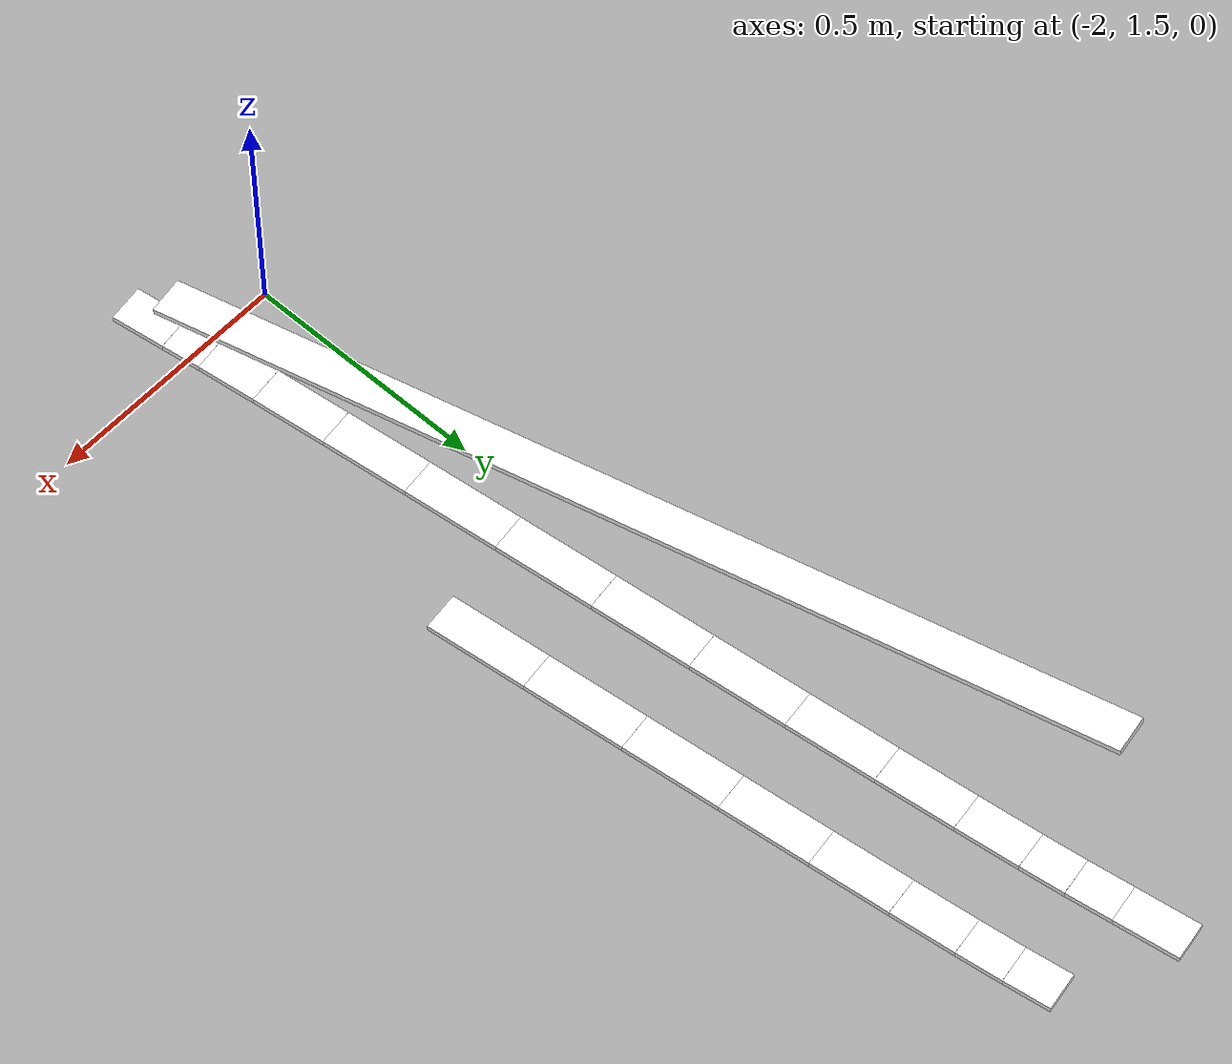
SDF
<sdf version="1.9">
 <world name="igvc_competition">
  <model name="Line_001_0215">
   <static>1</static>
   <pose>-2.0933 3.5122 0.011 0 0 -1.410399</pose>
   <link name="link">
    <visual name="visual">
     <geometry><box><size>0.1315 0.0762 0.012</size></box></geometry>
     <material>
      <ambient>0.98 0.98 0.98 1</ambient>
      <diffuse>0.98 0.98 0.98 1</diffuse>
      <specular>0.05 0.05 0.05 1</specular>
      <emissive>0.9 0.9 0.9 1</emissive>
     </material>
    </visual>
   </link>
  </model>
  <model name="Line_001_0216">
   <static>1</static>
   <pose>-1.8779 3.4328 0.011 0 0 -1.411595</pose>
   <link name="link">
    <visual name="visual">
     <geometry><box><size>0.0940 0.0762 0.012</size></box></geometry>
     <material>
      <ambient>0.98 0.98 0.98 1</ambient>
      <diffuse>0.98 0.98 0.98 1</diffuse>
      <specular>0.05 0.05 0.05 1</specular>
      <emissive>0.9 0.9 0.9 1</emissive>
     </material>
    </visual>
   </link>
  </model>
  <model name="Line_001_0217">
   <static>1</static>
   <pose>-2.0755 3.4017 0.011 0 0 -1.410987</pose>
   <link name="link">
    <visual name="visual">
     <geometry><box><size>0.0924 0.0762 0.012</size></box></geometry>
     <material>
      <ambient>0.98 0.98 0.98 1</ambient>
      <diffuse>0.98 0.98 0.98 1</diffuse>
      <specular>0.05 0.05 0.05 1</specular>
      <emissive>0.9 0.9 0.9 1</emissive>
     </material>
    </visual>
   </link>
  </model>
  <model name="Line_001_0218">
   <static>1</static>
   <pose>-1.8637 3.3405 0.011 0 0 -1.426006</pose>
   <link name="link">
    <visual name="visual">
     <geometry><box><size>0.0929 0.0762 0.012</size></box></geometry>
     <material>
      <ambient>0.98 0.98 0.98 1</ambient>
      <diffuse>0.98 0.98 0.98 1</diffuse>
      <specular>0.05 0.05 0.05 1</specular>
      <emissive>0.9 0.9 0.9 1</emissive>
     </material>
    </visual>
   </link>
  </model>
  <model name="Line_001_0219">
   <static>1</static>
   <pose>-2.0616 3.3114 0.011 0 0 -1.426235</pose>
   <link name="link">
    <visual name="visual">
     <geometry><box><size>0.0902 0.0762 0.012</size></box></geometry>
     <material>
      <ambient>0.98 0.98 0.98 1</ambient>
      <diffuse>0.98 0.98 0.98 1</diffuse>
      <specular>0.05 0.05 0.05 1</specular>
      <emissive>0.9 0.9 0.9 1</emissive>
     </material>
    </visual>
   </link>
  </model>
  <model name="Line_001_0220">
   <static>1</static>
   <pose>-1.8483 3.2290 0.011 0 0 -1.438745</pose>
   <link name="link">
    <visual name="visual">
     <geometry><box><size>0.1322 0.0762 0.012</size></box></geometry>
     <material>
      <ambient>0.98 0.98 0.98 1</ambient>
      <diffuse>0.98 0.98 0.98 1</diffuse>
      <specular>0.05 0.05 0.05 1</specular>
      <emissive>0.9 0.9 0.9 1</emissive>
     </material>
    </visual>
   </link>
  </model>
  <model name="Line_001_0221">
   <static>1</static>
   <pose>-2.0465 3.2022 0.011 0 0 -1.438448</pose>
   <link name="link">
    <visual name="visual">
     <geometry><box><size>0.1303 0.0762 0.012</size></box></geometry>
     <material>
      <ambient>0.98 0.98 0.98 1</ambient>
      <diffuse>0.98 0.98 0.98 1</diffuse>
      <specular>0.05 0.05 0.05 1</specular>
      <emissive>0.9 0.9 0.9 1</emissive>
     </material>
    </visual>
   </link>
  </model>
  <model name="Line_001_0222">
   <static>1</static>
   <pose>-1.8293 3.0825 0.011 0 0 -1.444237</pose>
   <link name="link">
    <visual name="visual">
     <geometry><box><size>0.1632 0.0762 0.012</size></box></geometry>
     <material>
      <ambient>0.98 0.98 0.98 1</ambient>
      <diffuse>0.98 0.98 0.98 1</diffuse>
      <specular>0.05 0.05 0.05 1</specular>
      <emissive>0.9 0.9 0.9 1</emissive>
     </material>
    </visual>
   </link>
  </model>
  <model name="Line_001_0223">
   <static>1</static>
   <pose>-2.0276 3.0571 0.011 0 0 -1.444226</pose>
   <link name="link">
    <visual name="visual">
     <geometry><box><size>0.1624 0.0762 0.012</size></box></geometry>
     <material>
      <ambient>0.98 0.98 0.98 1</ambient>
      <diffuse>0.98 0.98 0.98 1</diffuse>
      <specular>0.05 0.05 0.05 1</specular>
      <emissive>0.9 0.9 0.9 1</emissive>
     </material>
    </visual>
   </link>
  </model>
  <model name="Line_001_0224">
   <static>1</static>
   <pose>-1.8075 2.9091 0.011 0 0 -1.446574</pose>
   <link name="link">
    <visual name="visual">
     <geometry><box><size>0.1864 0.0762 0.012</size></box></geometry>
     <material>
      <ambient>0.98 0.98 0.98 1</ambient>
      <diffuse>0.98 0.98 0.98 1</diffuse>
      <specular>0.05 0.05 0.05 1</specular>
      <emissive>0.9 0.9 0.9 1</emissive>
     </material>
    </visual>
   </link>
  </model>
  <model name="Line_001_0225">
   <static>1</static>
   <pose>-2.0059 2.8842 0.011 0 0 -1.446775</pose>
   <link name="link">
    <visual name="visual">
     <geometry><box><size>0.1859 0.0762 0.012</size></box></geometry>
     <material>
      <ambient>0.98 0.98 0.98 1</ambient>
      <diffuse>0.98 0.98 0.98 1</diffuse>
      <specular>0.05 0.05 0.05 1</specular>
      <emissive>0.9 0.9 0.9 1</emissive>
     </material>
    </visual>
   </link>
  </model>
  <model name="Line_001_0226">
   <static>1</static>
   <pose>-1.7836 2.7166 0.011 0 0 -1.448411</pose>
   <link name="link">
    <visual name="visual">
     <geometry><box><size>0.2015 0.0762 0.012</size></box></geometry>
     <material>
      <ambient>0.98 0.98 0.98 1</ambient>
      <diffuse>0.98 0.98 0.98 1</diffuse>
      <specular>0.05 0.05 0.05 1</specular>
      <emissive>0.9 0.9 0.9 1</emissive>
     </material>
    </visual>
   </link>
  </model>
  <model name="Line_001_0227">
   <static>1</static>
   <pose>-1.9821 2.6921 0.011 0 0 -1.448350</pose>
   <link name="link">
    <visual name="visual">
     <geometry><box><size>0.2014 0.0762 0.012</size></box></geometry>
     <material>
      <ambient>0.98 0.98 0.98 1</ambient>
      <diffuse>0.98 0.98 0.98 1</diffuse>
      <specular>0.05 0.05 0.05 1</specular>
      <emissive>0.9 0.9 0.9 1</emissive>
     </material>
    </visual>
   </link>
  </model>
  <model name="Line_001_0228">
   <static>1</static>
   <pose>-1.7587 2.5130 0.011 0 0 -1.449235</pose>
   <link name="link">
    <visual name="visual">
     <geometry><box><size>0.2086 0.0762 0.012</size></box></geometry>
     <material>
      <ambient>0.98 0.98 0.98 1</ambient>
      <diffuse>0.98 0.98 0.98 1</diffuse>
      <specular>0.05 0.05 0.05 1</specular>
      <emissive>0.9 0.9 0.9 1</emissive>
     </material>
    </visual>
   </link>
  </model>
  <model name="Line_001_0229">
   <static>1</static>
   <pose>-1.9571 2.4886 0.011 0 0 -1.449177</pose>
   <link name="link">
    <visual name="visual">
     <geometry><box><size>0.2085 0.0762 0.012</size></box></geometry>
     <material>
      <ambient>0.98 0.98 0.98 1</ambient>
      <diffuse>0.98 0.98 0.98 1</diffuse>
      <specular>0.05 0.05 0.05 1</specular>
      <emissive>0.9 0.9 0.9 1</emissive>
     </material>
    </visual>
   </link>
  </model>
  <model name="Line_001_0230">
   <static>1</static>
   <pose>-1.7334 2.3066 0.011 0 0 -1.448954</pose>
   <link name="link">
    <visual name="visual">
     <geometry><box><size>0.2073 0.0762 0.012</size></box></geometry>
     <material>
      <ambient>0.98 0.98 0.98 1</ambient>
      <diffuse>0.98 0.98 0.98 1</diffuse>
      <specular>0.05 0.05 0.05 1</specular>
      <emissive>0.9 0.9 0.9 1</emissive>
     </material>
    </visual>
   </link>
  </model>
  <model name="Line_001_0231">
   <static>1</static>
   <pose>-1.9319 2.2821 0.011 0 0 -1.449012</pose>
   <link name="link">
    <visual name="visual">
     <geometry><box><size>0.2074 0.0762 0.012</size></box></geometry>
     <material>
      <ambient>0.98 0.98 0.98 1</ambient>
      <diffuse>0.98 0.98 0.98 1</diffuse>
      <specular>0.05 0.05 0.05 1</specular>
      <emissive>0.9 0.9 0.9 1</emissive>
     </material>
    </visual>
   </link>
  </model>
  <model name="Line_001_0233">
   <static>1</static>
   <pose>-1.9072 2.0808 0.011 0 0 -1.448004</pose>
   <link name="link">
    <visual name="visual">
     <geometry><box><size>0.1984 0.0762 0.012</size></box></geometry>
     <material>
      <ambient>0.98 0.98 0.98 1</ambient>
      <diffuse>0.98 0.98 0.98 1</diffuse>
      <specular>0.05 0.05 0.05 1</specular>
      <emissive>0.9 0.9 0.9 1</emissive>
     </material>
    </visual>
   </link>
  </model>
  <model name="Line_001_0235">
   <static>1</static>
   <pose>-1.8838 1.8924 0.011 0 0 -1.446236</pose>
   <link name="link">
    <visual name="visual">
     <geometry><box><size>0.1811 0.0762 0.012</size></box></geometry>
     <material>
      <ambient>0.98 0.98 0.98 1</ambient>
      <diffuse>0.98 0.98 0.98 1</diffuse>
      <specular>0.05 0.05 0.05 1</specular>
      <emissive>0.9 0.9 0.9 1</emissive>
     </material>
    </visual>
   </link>
  </model>
  <model name="Line_001_0237">
   <static>1</static>
   <pose>-1.8625 1.7253 0.011 0 0 -1.442145</pose>
   <link name="link">
    <visual name="visual">
     <geometry><box><size>0.1559 0.0762 0.012</size></box></geometry>
     <material>
      <ambient>0.98 0.98 0.98 1</ambient>
      <diffuse>0.98 0.98 0.98 1</diffuse>
      <specular>0.05 0.05 0.05 1</specular>
      <emissive>0.9 0.9 0.9 1</emissive>
     </material>
    </visual>
   </link>
  </model>
  <model name="Line_001_0239">
   <static>1</static>
   <pose>-1.8443 1.5872 0.011 0 0 -1.435929</pose>
   <link name="link">
    <visual name="visual">
     <geometry><box><size>0.1227 0.0762 0.012</size></box></geometry>
     <material>
      <ambient>0.98 0.98 0.98 1</ambient>
      <diffuse>0.98 0.98 0.98 1</diffuse>
      <specular>0.05 0.05 0.05 1</specular>
      <emissive>0.9 0.9 0.9 1</emissive>
     </material>
    </visual>
   </link>
  </model>
  <model name="Line_001_0241">
   <static>1</static>
   <pose>-1.8299 1.4868 0.011 0 0 -1.418147</pose>
   <link name="link">
    <visual name="visual">
     <geometry><box><size>0.0802 0.0762 0.012</size></box></geometry>
     <material>
      <ambient>0.98 0.98 0.98 1</ambient>
      <diffuse>0.98 0.98 0.98 1</diffuse>
      <specular>0.05 0.05 0.05 1</specular>
      <emissive>0.9 0.9 0.9 1</emissive>
     </material>
    </visual>
   </link>
  </model>
  <model name="Line_001_0243">
   <static>1</static>
   <pose>-1.8157 1.3919 0.011 0 0 -1.426113</pose>
   <link name="link">
    <visual name="visual">
     <geometry><box><size>0.1117 0.0762 0.012</size></box></geometry>
     <material>
      <ambient>0.98 0.98 0.98 1</ambient>
      <diffuse>0.98 0.98 0.98 1</diffuse>
      <specular>0.05 0.05 0.05 1</specular>
      <emissive>0.9 0.9 0.9 1</emissive>
     </material>
    </visual>
   </link>
  </model>
  <model name="Ramp_up_left_white_line">
   <static>1</static>
   <pose>-2.0133 2.3766 0.2005 0.000000 -0.148923 1.735700</pose>
   <link name="link">
    <visual name="visual">
     <geometry><box><size>2.0017 0.0762 0.012</size></box></geometry>
     <material>
      <ambient>0.98 0.98 0.98 1</ambient>
      <diffuse>0.98 0.98 0.98 1</diffuse>
      <specular>0.05 0.05 0.05 1</specular>
      <emissive>0.9 0.9 0.9 1</emissive>
     </material>
    </visual>
   </link>
  </model>
 </world>
</sdf>
